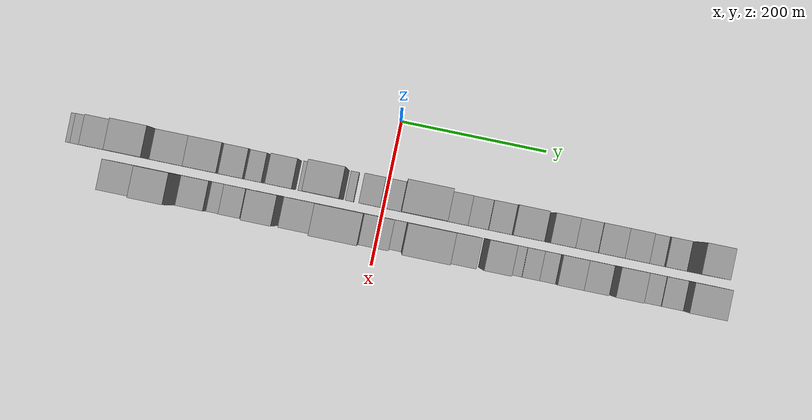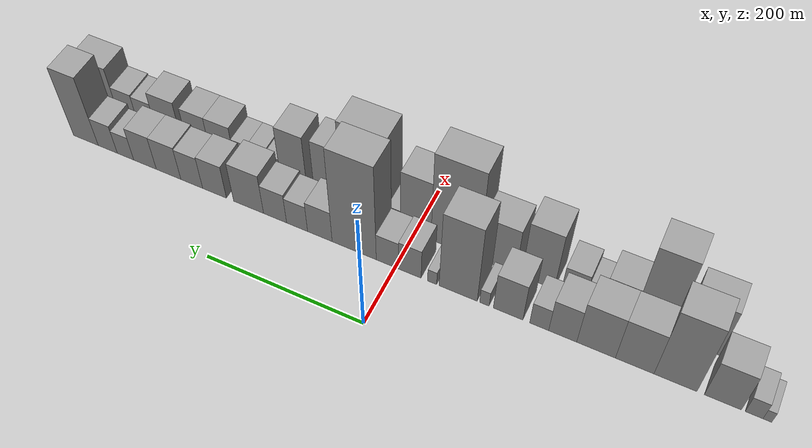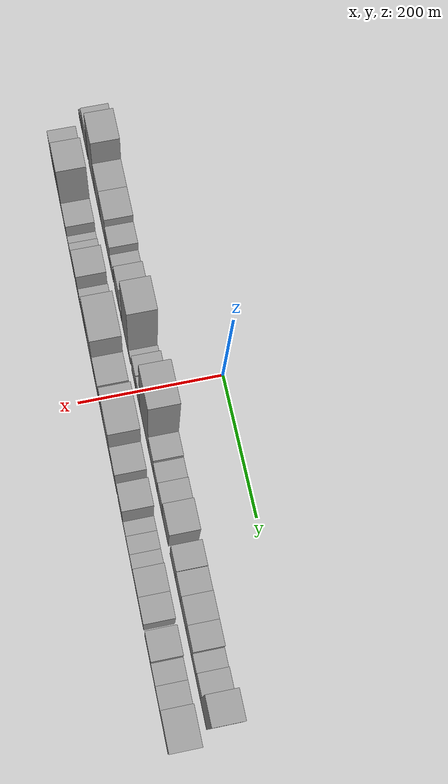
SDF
<sdf version="1.6">
 <world name="default">
  <scene>
   <sky><clouds><speed>12</speed></clouds></sky>
   <ambient>0.4 0.4 0.4 1</ambient>
   <background>0.7 0.7 0.7 1</background>
   <shadows>1</shadows>
  </scene>
  <gravity>0 0 -9.8066</gravity>
  <magnetic_field>6e-06 2.3e-05 -4.2e-05</magnetic_field>
  <physics default="0" name="default_physics" type="ode">
   <ode>
    <solver>
     <type>quick</type>
     <iters>10</iters>
     <sor>1.0</sor>
     <use_dynamic_moi_rescaling>0</use_dynamic_moi_rescaling>
    </solver>
    <constraints>
     <cfm>0</cfm>
     <erp>0.2</erp>
     <contact_max_correcting_vel>100</contact_max_correcting_vel>
     <contact_surface_layer>0.001</contact_surface_layer>
    </constraints>
   </ode>
   <max_step_size>0.004</max_step_size>
   <real_time_factor>1</real_time_factor>
   <real_time_update_rate>250</real_time_update_rate>
  </physics>
  <light name="sun" type="directional">
   <pose>0 0 10 0 0 0</pose>
   <diffuse>0.8 0.8 0.8 1</diffuse>
   <specular>0.2 0.2 0.2 1</specular>
   <attenuation>
    <range>1000</range>
    <constant>0.9</constant>
    <linear>0.01</linear>
    <quadratic>0.001</quadratic>
   </attenuation>
   <direction>-0.5 0.1 -0.9</direction>
  </light>
  <model name="building_1">
   <static>1</static>
   <pose>100.0000 -429.3522 0 0.000000 0.000000 0.000000</pose>
   <link name="link">
    <pose>0 0 10.50 0 0 0</pose>
    <collision name="collision"><geometry><box><size>40.0000 9.2957 21.0000</size></box></geometry></collision>
    <visual name="visual">
     <cast_shadows>0</cast_shadows>
     <geometry><box><size>40.0000 9.2957 21.0000</size></box></geometry>
     <material>
      <script>
       <uri>model://grey_wall/materials/scripts</uri>
       <uri>model://grey_wall/materials/textures</uri>
       <name>vrc/grey_wall</name>
      </script>
     </material>
    </visual>
   </link>
  </model>
  <model name="building_2">
   <static>1</static>
   <pose>100.0000 -415.3321 0 0.000000 0.000000 0.000000</pose>
   <link name="link">
    <pose>0 0 16.50 0 0 0</pose>
    <collision name="collision"><geometry><box><size>40.0000 18.7444 33.0000</size></box></geometry></collision>
    <visual name="visual">
     <cast_shadows>0</cast_shadows>
     <geometry><box><size>40.0000 18.7444 33.0000</size></box></geometry>
     <material>
      <script>
       <uri>model://grey_wall/materials/scripts</uri>
       <uri>model://grey_wall/materials/textures</uri>
       <name>vrc/grey_wall</name>
      </script>
     </material>
    </visual>
   </link>
  </model>
  <model name="building_3">
   <static>1</static>
   <pose>100.0000 -382.0279 0 0.000000 0.000000 0.000000</pose>
   <link name="link">
    <pose>0 0 36.00 0 0 0</pose>
    <collision name="collision"><geometry><box><size>40.0000 39.8640 72.0000</size></box></geometry></collision>
    <visual name="visual">
     <cast_shadows>0</cast_shadows>
     <geometry><box><size>40.0000 39.8640 72.0000</size></box></geometry>
     <material>
      <script>
       <uri>model://grey_wall/materials/scripts</uri>
       <uri>model://grey_wall/materials/textures</uri>
       <name>vrc/grey_wall</name>
      </script>
     </material>
    </visual>
   </link>
  </model>
  <model name="building_4">
   <static>1</static>
   <pose>100.0000 -330.4320 0 0.000000 0.000000 0.000000</pose>
   <link name="link">
    <pose>0 0 66.00 0 0 0</pose>
    <collision name="collision"><geometry><box><size>40.0000 47.3279 132.0000</size></box></geometry></collision>
    <visual name="visual">
     <cast_shadows>0</cast_shadows>
     <geometry><box><size>40.0000 47.3279 132.0000</size></box></geometry>
     <material>
      <script>
       <uri>model://grey_wall/materials/scripts</uri>
       <uri>model://grey_wall/materials/textures</uri>
       <name>vrc/grey_wall</name>
      </script>
     </material>
    </visual>
   </link>
  </model>
  <model name="building_5">
   <static>1</static>
   <pose>100.0000 -285.1387 0 0.000000 0.000000 0.000000</pose>
   <link name="link">
    <pose>0 0 40.50 0 0 0</pose>
    <collision name="collision"><geometry><box><size>40.0000 43.2586 81.0000</size></box></geometry></collision>
    <visual name="visual">
     <cast_shadows>0</cast_shadows>
     <geometry><box><size>40.0000 43.2586 81.0000</size></box></geometry>
     <material>
      <script>
       <uri>model://grey_wall/materials/scripts</uri>
       <uri>model://grey_wall/materials/textures</uri>
       <name>vrc/grey_wall</name>
      </script>
     </material>
    </visual>
   </link>
  </model>
  <model name="building_6">
   <static>1</static>
   <pose>100.0000 -241.3889 0 0.000000 0.000000 0.000000</pose>
   <link name="link">
    <pose>0 0 40.50 0 0 0</pose>
    <collision name="collision"><geometry><box><size>40.0000 44.2410 81.0000</size></box></geometry></collision>
    <visual name="visual">
     <cast_shadows>0</cast_shadows>
     <geometry><box><size>40.0000 44.2410 81.0000</size></box></geometry>
     <material>
      <script>
       <uri>model://grey_wall/materials/scripts</uri>
       <uri>model://grey_wall/materials/textures</uri>
       <name>vrc/grey_wall</name>
      </script>
     </material>
    </visual>
   </link>
  </model>
  <model name="building_7">
   <static>1</static>
   <pose>100.0000 -202.9752 0 0.000000 0.000000 0.000000</pose>
   <link name="link">
    <pose>0 0 31.50 0 0 0</pose>
    <collision name="collision"><geometry><box><size>40.0000 32.5865 63.0000</size></box></geometry></collision>
    <visual name="visual">
     <cast_shadows>0</cast_shadows>
     <geometry><box><size>40.0000 32.5865 63.0000</size></box></geometry>
     <material>
      <script>
       <uri>model://grey_wall/materials/scripts</uri>
       <uri>model://grey_wall/materials/textures</uri>
       <name>vrc/grey_wall</name>
      </script>
     </material>
    </visual>
   </link>
  </model>
  <model name="building_8">
   <static>1</static>
   <pose>100.0000 -175.5141 0 0.000000 0.000000 0.000000</pose>
   <link name="link">
    <pose>0 0 21.00 0 0 0</pose>
    <collision name="collision"><geometry><box><size>40.0000 22.3356 42.0000</size></box></geometry></collision>
    <visual name="visual">
     <cast_shadows>0</cast_shadows>
     <geometry><box><size>40.0000 22.3356 42.0000</size></box></geometry>
     <material>
      <script>
       <uri>model://grey_wall/materials/scripts</uri>
       <uri>model://grey_wall/materials/textures</uri>
       <name>vrc/grey_wall</name>
      </script>
     </material>
    </visual>
   </link>
  </model>
  <model name="building_9">
   <static>1</static>
   <pose>100.0000 -138.6927 0 0.000000 0.000000 0.000000</pose>
   <link name="link">
    <pose>0 0 34.50 0 0 0</pose>
    <collision name="collision"><geometry><box><size>40.0000 35.3074 69.0000</size></box></geometry></collision>
    <visual name="visual">
     <cast_shadows>0</cast_shadows>
     <geometry><box><size>40.0000 35.3074 69.0000</size></box></geometry>
     <material>
      <script>
       <uri>model://grey_wall/materials/scripts</uri>
       <uri>model://grey_wall/materials/textures</uri>
       <name>vrc/grey_wall</name>
      </script>
     </material>
    </visual>
   </link>
  </model>
  <model name="building_10">
   <static>1</static>
   <pose>100.0000 -110.3156 0 0.000000 0.000000 0.000000</pose>
   <link name="link">
    <pose>0 0 13.50 0 0 0</pose>
    <collision name="collision"><geometry><box><size>40.0000 11.4467 27.0000</size></box></geometry></collision>
    <visual name="visual">
     <cast_shadows>0</cast_shadows>
     <geometry><box><size>40.0000 11.4467 27.0000</size></box></geometry>
     <material>
      <script>
       <uri>model://grey_wall/materials/scripts</uri>
       <uri>model://grey_wall/materials/textures</uri>
       <name>vrc/grey_wall</name>
      </script>
     </material>
    </visual>
   </link>
  </model>
  <model name="building_11">
   <static>1</static>
   <pose>100.0000 -78.2256 0 0.000000 0.000000 0.000000</pose>
   <link name="link">
    <pose>0 0 70.50 0 0 0</pose>
    <collision name="collision"><geometry><box><size>40.0000 46.7335 141.0000</size></box></geometry></collision>
    <visual name="visual">
     <cast_shadows>0</cast_shadows>
     <geometry><box><size>40.0000 46.7335 141.0000</size></box></geometry>
     <material>
      <script>
       <uri>model://grey_wall/materials/scripts</uri>
       <uri>model://grey_wall/materials/textures</uri>
       <name>vrc/grey_wall</name>
      </script>
     </material>
    </visual>
   </link>
  </model>
  <model name="building_12">
   <static>1</static>
   <pose>100.0000 -46.1879 0 0.000000 0.000000 0.000000</pose>
   <link name="link">
    <pose>0 0 12.00 0 0 0</pose>
    <collision name="collision"><geometry><box><size>40.0000 11.3419 24.0000</size></box></geometry></collision>
    <visual name="visual">
     <cast_shadows>0</cast_shadows>
     <geometry><box><size>40.0000 11.3419 24.0000</size></box></geometry>
     <material>
      <script>
       <uri>model://grey_wall/materials/scripts</uri>
       <uri>model://grey_wall/materials/textures</uri>
       <name>vrc/grey_wall</name>
      </script>
     </material>
    </visual>
   </link>
  </model>
  <model name="building_13">
   <static>1</static>
   <pose>100.0000 -18.2695 0 0.000000 0.000000 0.000000</pose>
   <link name="link">
    <pose>0 0 27.00 0 0 0</pose>
    <collision name="collision"><geometry><box><size>40.0000 28.4949 54.0000</size></box></geometry></collision>
    <visual name="visual">
     <cast_shadows>0</cast_shadows>
     <geometry><box><size>40.0000 28.4949 54.0000</size></box></geometry>
     <material>
      <script>
       <uri>model://grey_wall/materials/scripts</uri>
       <uri>model://grey_wall/materials/textures</uri>
       <name>vrc/grey_wall</name>
      </script>
     </material>
    </visual>
   </link>
  </model>
  <model name="building_14">
   <static>1</static>
   <pose>100.0000 10.0412 0 0.000000 0.000000 0.000000</pose>
   <link name="link">
    <pose>0 0 25.50 0 0 0</pose>
    <collision name="collision"><geometry><box><size>40.0000 28.1263 51.0000</size></box></geometry></collision>
    <visual name="visual">
     <cast_shadows>0</cast_shadows>
     <geometry><box><size>40.0000 28.1263 51.0000</size></box></geometry>
     <material>
      <script>
       <uri>model://grey_wall/materials/scripts</uri>
       <uri>model://grey_wall/materials/textures</uri>
       <name>vrc/grey_wall</name>
      </script>
     </material>
    </visual>
   </link>
  </model>
  <model name="building_15">
   <static>1</static>
   <pose>100.0000 52.5941 0 0.000000 0.000000 0.000000</pose>
   <link name="link">
    <pose>0 0 87.00 0 0 0</pose>
    <collision name="collision"><geometry><box><size>40.0000 56.9795 174.0000</size></box></geometry></collision>
    <visual name="visual">
     <cast_shadows>0</cast_shadows>
     <geometry><box><size>40.0000 56.9795 174.0000</size></box></geometry>
     <material>
      <script>
       <uri>model://grey_wall/materials/scripts</uri>
       <uri>model://grey_wall/materials/textures</uri>
       <name>vrc/grey_wall</name>
      </script>
     </material>
    </visual>
   </link>
  </model>
  <model name="building_16">
   <static>1</static>
   <pose>100.0000 97.2568 0 0.000000 0.000000 0.000000</pose>
   <link name="link">
    <pose>0 0 28.50 0 0 0</pose>
    <collision name="collision"><geometry><box><size>40.0000 32.3460 57.0000</size></box></geometry></collision>
    <visual name="visual">
     <cast_shadows>0</cast_shadows>
     <geometry><box><size>40.0000 32.3460 57.0000</size></box></geometry>
     <material>
      <script>
       <uri>model://grey_wall/materials/scripts</uri>
       <uri>model://grey_wall/materials/textures</uri>
       <name>vrc/grey_wall</name>
      </script>
     </material>
    </visual>
   </link>
  </model>
  <model name="building_17">
   <static>1</static>
   <pose>100.0000 127.3956 0 0.000000 0.000000 0.000000</pose>
   <link name="link">
    <pose>0 0 24.00 0 0 0</pose>
    <collision name="collision"><geometry><box><size>40.0000 27.9316 48.0000</size></box></geometry></collision>
    <visual name="visual">
     <cast_shadows>0</cast_shadows>
     <geometry><box><size>40.0000 27.9316 48.0000</size></box></geometry>
     <material>
      <script>
       <uri>model://grey_wall/materials/scripts</uri>
       <uri>model://grey_wall/materials/textures</uri>
       <name>vrc/grey_wall</name>
      </script>
     </material>
    </visual>
   </link>
  </model>
  <model name="building_18">
   <static>1</static>
   <pose>100.0000 156.8957 0 0.000000 0.000000 0.000000</pose>
   <link name="link">
    <pose>0 0 27.00 0 0 0</pose>
    <collision name="collision"><geometry><box><size>40.0000 31.0685 54.0000</size></box></geometry></collision>
    <visual name="visual">
     <cast_shadows>0</cast_shadows>
     <geometry><box><size>40.0000 31.0685 54.0000</size></box></geometry>
     <material>
      <script>
       <uri>model://grey_wall/materials/scripts</uri>
       <uri>model://grey_wall/materials/textures</uri>
       <name>vrc/grey_wall</name>
      </script>
     </material>
    </visual>
   </link>
  </model>
  <model name="building_19">
   <static>1</static>
   <pose>100.0000 192.8929 0 0.000000 0.000000 0.000000</pose>
   <link name="link">
    <pose>0 0 36.00 0 0 0</pose>
    <collision name="collision"><geometry><box><size>40.0000 40.9259 72.0000</size></box></geometry></collision>
    <visual name="visual">
     <cast_shadows>0</cast_shadows>
     <geometry><box><size>40.0000 40.9259 72.0000</size></box></geometry>
     <material>
      <script>
       <uri>model://grey_wall/materials/scripts</uri>
       <uri>model://grey_wall/materials/textures</uri>
       <name>vrc/grey_wall</name>
      </script>
     </material>
    </visual>
   </link>
  </model>
  <model name="building_20">
   <static>1</static>
   <pose>100.0000 239.9159 0 0.000000 0.000000 0.000000</pose>
   <link name="link">
    <pose>0 0 30.00 0 0 0</pose>
    <collision name="collision"><geometry><box><size>40.0000 33.1200 60.0000</size></box></geometry></collision>
    <visual name="visual">
     <cast_shadows>0</cast_shadows>
     <geometry><box><size>40.0000 33.1200 60.0000</size></box></geometry>
     <material>
      <script>
       <uri>model://grey_wall/materials/scripts</uri>
       <uri>model://grey_wall/materials/textures</uri>
       <name>vrc/grey_wall</name>
      </script>
     </material>
    </visual>
   </link>
  </model>
  <model name="building_21">
   <static>1</static>
   <pose>100.0000 271.8289 0 0.000000 0.000000 0.000000</pose>
   <link name="link">
    <pose>0 0 28.50 0 0 0</pose>
    <collision name="collision"><geometry><box><size>40.0000 30.7061 57.0000</size></box></geometry></collision>
    <visual name="visual">
     <cast_shadows>0</cast_shadows>
     <geometry><box><size>40.0000 30.7061 57.0000</size></box></geometry>
     <material>
      <script>
       <uri>model://grey_wall/materials/scripts</uri>
       <uri>model://grey_wall/materials/textures</uri>
       <name>vrc/grey_wall</name>
      </script>
     </material>
    </visual>
   </link>
  </model>
  <model name="building_22">
   <static>1</static>
   <pose>100.0000 304.7334 0 0.000000 0.000000 0.000000</pose>
   <link name="link">
    <pose>0 0 30.00 0 0 0</pose>
    <collision name="collision"><geometry><box><size>40.0000 35.1029 60.0000</size></box></geometry></collision>
    <visual name="visual">
     <cast_shadows>0</cast_shadows>
     <geometry><box><size>40.0000 35.1029 60.0000</size></box></geometry>
     <material>
      <script>
       <uri>model://grey_wall/materials/scripts</uri>
       <uri>model://grey_wall/materials/textures</uri>
       <name>vrc/grey_wall</name>
      </script>
     </material>
    </visual>
   </link>
  </model>
  <model name="building_23">
   <static>1</static>
   <pose>100.0000 338.6224 0 0.000000 0.000000 0.000000</pose>
   <link name="link">
    <pose>0 0 30.00 0 0 0</pose>
    <collision name="collision"><geometry><box><size>40.0000 32.6751 60.0000</size></box></geometry></collision>
    <visual name="visual">
     <cast_shadows>0</cast_shadows>
     <geometry><box><size>40.0000 32.6751 60.0000</size></box></geometry>
     <material>
      <script>
       <uri>model://grey_wall/materials/scripts</uri>
       <uri>model://grey_wall/materials/textures</uri>
       <name>vrc/grey_wall</name>
      </script>
     </material>
    </visual>
   </link>
  </model>
  <model name="building_24">
   <static>1</static>
   <pose>100.0000 366.9691 0 0.000000 0.000000 0.000000</pose>
   <link name="link">
    <pose>0 0 21.00 0 0 0</pose>
    <collision name="collision"><geometry><box><size>40.0000 24.0184 42.0000</size></box></geometry></collision>
    <visual name="visual">
     <cast_shadows>0</cast_shadows>
     <geometry><box><size>40.0000 24.0184 42.0000</size></box></geometry>
     <material>
      <script>
       <uri>model://grey_wall/materials/scripts</uri>
       <uri>model://grey_wall/materials/textures</uri>
       <name>vrc/grey_wall</name>
      </script>
     </material>
    </visual>
   </link>
  </model>
  <model name="building_25">
   <static>1</static>
   <pose>100.0000 393.1067 0 0.000000 0.000000 0.000000</pose>
   <link name="link">
    <pose>0 0 25.50 0 0 0</pose>
    <collision name="collision"><geometry><box><size>40.0000 28.2567 51.0000</size></box></geometry></collision>
    <visual name="visual">
     <cast_shadows>0</cast_shadows>
     <geometry><box><size>40.0000 28.2567 51.0000</size></box></geometry>
     <material>
      <script>
       <uri>model://grey_wall/materials/scripts</uri>
       <uri>model://grey_wall/materials/textures</uri>
       <name>vrc/grey_wall</name>
      </script>
     </material>
    </visual>
   </link>
  </model>
  <model name="building_26">
   <static>1</static>
   <pose>100.0000 425.6987 0 0.000000 0.000000 0.000000</pose>
   <link name="link">
    <pose>0 0 61.50 0 0 0</pose>
    <collision name="collision"><geometry><box><size>40.0000 36.9274 123.0000</size></box></geometry></collision>
    <visual name="visual">
     <cast_shadows>0</cast_shadows>
     <geometry><box><size>40.0000 36.9274 123.0000</size></box></geometry>
     <material>
      <script>
       <uri>model://grey_wall/materials/scripts</uri>
       <uri>model://grey_wall/materials/textures</uri>
       <name>vrc/grey_wall</name>
      </script>
     </material>
    </visual>
   </link>
  </model>
  <model name="building_27">
   <static>1</static>
   <pose>152.0000 -340.6955 0 0.000000 0.000000 0.000000</pose>
   <link name="link">
    <pose>0 0 45.00 0 0 0</pose>
    <collision name="collision"><geometry><box><size>40.0000 46.2030 90.0000</size></box></geometry></collision>
    <visual name="visual">
     <cast_shadows>0</cast_shadows>
     <geometry><box><size>40.0000 46.2030 90.0000</size></box></geometry>
     <material>
      <script>
       <uri>model://grey_wall/materials/scripts</uri>
       <uri>model://grey_wall/materials/textures</uri>
       <name>vrc/grey_wall</name>
      </script>
     </material>
    </visual>
   </link>
  </model>
  <model name="building_28">
   <static>1</static>
   <pose>152.0000 -287.5244 0 0.000000 0.000000 0.000000</pose>
   <link name="link">
    <pose>0 0 73.50 0 0 0</pose>
    <collision name="collision"><geometry><box><size>40.0000 44.1390 147.0000</size></box></geometry></collision>
    <visual name="visual">
     <cast_shadows>0</cast_shadows>
     <geometry><box><size>40.0000 44.1390 147.0000</size></box></geometry>
     <material>
      <script>
       <uri>model://grey_wall/materials/scripts</uri>
       <uri>model://grey_wall/materials/textures</uri>
       <name>vrc/grey_wall</name>
      </script>
     </material>
    </visual>
   </link>
  </model>
  <model name="building_29">
   <static>1</static>
   <pose>152.0000 -247.1263 0 0.000000 0.000000 0.000000</pose>
   <link name="link">
    <pose>0 0 31.50 0 0 0</pose>
    <collision name="collision"><geometry><box><size>40.0000 36.6573 63.0000</size></box></geometry></collision>
    <visual name="visual">
     <cast_shadows>0</cast_shadows>
     <geometry><box><size>40.0000 36.6573 63.0000</size></box></geometry>
     <material>
      <script>
       <uri>model://grey_wall/materials/scripts</uri>
       <uri>model://grey_wall/materials/textures</uri>
       <name>vrc/grey_wall</name>
      </script>
     </material>
    </visual>
   </link>
  </model>
  <model name="building_30">
   <static>1</static>
   <pose>152.0000 -219.5107 0 0.000000 0.000000 0.000000</pose>
   <link name="link">
    <pose>0 0 18.00 0 0 0</pose>
    <collision name="collision"><geometry><box><size>40.0000 18.5739 36.0000</size></box></geometry></collision>
    <visual name="visual">
     <cast_shadows>0</cast_shadows>
     <geometry><box><size>40.0000 18.5739 36.0000</size></box></geometry>
     <material>
      <script>
       <uri>model://grey_wall/materials/scripts</uri>
       <uri>model://grey_wall/materials/textures</uri>
       <name>vrc/grey_wall</name>
      </script>
     </material>
    </visual>
   </link>
  </model>
  <model name="building_31">
   <static>1</static>
   <pose>152.0000 -195.7394 0 0.000000 0.000000 0.000000</pose>
   <link name="link">
    <pose>0 0 25.50 0 0 0</pose>
    <collision name="collision"><geometry><box><size>40.0000 28.9689 51.0000</size></box></geometry></collision>
    <visual name="visual">
     <cast_shadows>0</cast_shadows>
     <geometry><box><size>40.0000 28.9689 51.0000</size></box></geometry>
     <material>
      <script>
       <uri>model://grey_wall/materials/scripts</uri>
       <uri>model://grey_wall/materials/textures</uri>
       <name>vrc/grey_wall</name>
      </script>
     </material>
    </visual>
   </link>
  </model>
  <model name="building_32">
   <static>1</static>
   <pose>152.0000 -153.5335 0 0.000000 0.000000 0.000000</pose>
   <link name="link">
    <pose>0 0 52.50 0 0 0</pose>
    <collision name="collision"><geometry><box><size>40.0000 39.4429 105.0000</size></box></geometry></collision>
    <visual name="visual">
     <cast_shadows>0</cast_shadows>
     <geometry><box><size>40.0000 39.4429 105.0000</size></box></geometry>
     <material>
      <script>
       <uri>model://grey_wall/materials/scripts</uri>
       <uri>model://grey_wall/materials/textures</uri>
       <name>vrc/grey_wall</name>
      </script>
     </material>
    </visual>
   </link>
  </model>
  <model name="building_33">
   <static>1</static>
   <pose>152.0000 -104.1254 0 0.000000 0.000000 0.000000</pose>
   <link name="link">
    <pose>0 0 42.00 0 0 0</pose>
    <collision name="collision"><geometry><box><size>40.0000 45.3733 84.0000</size></box></geometry></collision>
    <visual name="visual">
     <cast_shadows>0</cast_shadows>
     <geometry><box><size>40.0000 45.3733 84.0000</size></box></geometry>
     <material>
      <script>
       <uri>model://grey_wall/materials/scripts</uri>
       <uri>model://grey_wall/materials/textures</uri>
       <name>vrc/grey_wall</name>
      </script>
     </material>
    </visual>
   </link>
  </model>
  <model name="building_34">
   <static>1</static>
   <pose>152.0000 -51.1165 0 0.000000 0.000000 0.000000</pose>
   <link name="link">
    <pose>0 0 81.00 0 0 0</pose>
    <collision name="collision"><geometry><box><size>40.0000 60.6444 162.0000</size></box></geometry></collision>
    <visual name="visual">
     <cast_shadows>0</cast_shadows>
     <geometry><box><size>40.0000 60.6444 162.0000</size></box></geometry>
     <material>
      <script>
       <uri>model://grey_wall/materials/scripts</uri>
       <uri>model://grey_wall/materials/textures</uri>
       <name>vrc/grey_wall</name>
      </script>
     </material>
    </visual>
   </link>
  </model>
  <model name="building_35">
   <static>1</static>
   <pose>152.0000 -1.2081 0 0.000000 0.000000 0.000000</pose>
   <link name="link">
    <pose>0 0 54.00 0 0 0</pose>
    <collision name="collision"><geometry><box><size>40.0000 39.1724 108.0000</size></box></geometry></collision>
    <visual name="visual">
     <cast_shadows>0</cast_shadows>
     <geometry><box><size>40.0000 39.1724 108.0000</size></box></geometry>
     <material>
      <script>
       <uri>model://grey_wall/materials/scripts</uri>
       <uri>model://grey_wall/materials/textures</uri>
       <name>vrc/grey_wall</name>
      </script>
     </material>
    </visual>
   </link>
  </model>
  <model name="building_36">
   <static>1</static>
   <pose>152.0000 26.8539 0 0.000000 0.000000 0.000000</pose>
   <link name="link">
    <pose>0 0 16.50 0 0 0</pose>
    <collision name="collision"><geometry><box><size>40.0000 16.9517 33.0000</size></box></geometry></collision>
    <visual name="visual">
     <cast_shadows>0</cast_shadows>
     <geometry><box><size>40.0000 16.9517 33.0000</size></box></geometry>
     <material>
      <script>
       <uri>model://grey_wall/materials/scripts</uri>
       <uri>model://grey_wall/materials/textures</uri>
       <name>vrc/grey_wall</name>
      </script>
     </material>
    </visual>
   </link>
  </model>
  <model name="building_37">
   <static>1</static>
   <pose>152.0000 65.6807 0 0.000000 0.000000 0.000000</pose>
   <link name="link">
    <pose>0 0 76.50 0 0 0</pose>
    <collision name="collision"><geometry><box><size>40.0000 60.7019 153.0000</size></box></geometry></collision>
    <visual name="visual">
     <cast_shadows>0</cast_shadows>
     <geometry><box><size>40.0000 60.7019 153.0000</size></box></geometry>
     <material>
      <script>
       <uri>model://grey_wall/materials/scripts</uri>
       <uri>model://grey_wall/materials/textures</uri>
       <name>vrc/grey_wall</name>
      </script>
     </material>
    </visual>
   </link>
  </model>
  <model name="building_38">
   <static>1</static>
   <pose>152.0000 114.2111 0 0.000000 0.000000 0.000000</pose>
   <link name="link">
    <pose>0 0 49.50 0 0 0</pose>
    <collision name="collision"><geometry><box><size>40.0000 36.3589 99.0000</size></box></geometry></collision>
    <visual name="visual">
     <cast_shadows>0</cast_shadows>
     <geometry><box><size>40.0000 36.3589 99.0000</size></box></geometry>
     <material>
      <script>
       <uri>model://grey_wall/materials/scripts</uri>
       <uri>model://grey_wall/materials/textures</uri>
       <name>vrc/grey_wall</name>
      </script>
     </material>
    </visual>
   </link>
  </model>
  <model name="building_39">
   <static>1</static>
   <pose>152.0000 160.4192 0 0.000000 0.000000 0.000000</pose>
   <link name="link">
    <pose>0 0 49.50 0 0 0</pose>
    <collision name="collision"><geometry><box><size>40.0000 36.0573 99.0000</size></box></geometry></collision>
    <visual name="visual">
     <cast_shadows>0</cast_shadows>
     <geometry><box><size>40.0000 36.0573 99.0000</size></box></geometry>
     <material>
      <script>
       <uri>model://grey_wall/materials/scripts</uri>
       <uri>model://grey_wall/materials/textures</uri>
       <name>vrc/grey_wall</name>
      </script>
     </material>
    </visual>
   </link>
  </model>
  <model name="building_40">
   <static>1</static>
   <pose>152.0000 188.2636 0 0.000000 0.000000 0.000000</pose>
   <link name="link">
    <pose>0 0 19.50 0 0 0</pose>
    <collision name="collision"><geometry><box><size>40.0000 19.6315 39.0000</size></box></geometry></collision>
    <visual name="visual">
     <cast_shadows>0</cast_shadows>
     <geometry><box><size>40.0000 19.6315 39.0000</size></box></geometry>
     <material>
      <script>
       <uri>model://grey_wall/materials/scripts</uri>
       <uri>model://grey_wall/materials/textures</uri>
       <name>vrc/grey_wall</name>
      </script>
     </material>
    </visual>
   </link>
  </model>
  <model name="building_41">
   <static>1</static>
   <pose>152.0000 209.8251 0 0.000000 0.000000 0.000000</pose>
   <link name="link">
    <pose>0 0 21.00 0 0 0</pose>
    <collision name="collision"><geometry><box><size>40.0000 23.4914 42.0000</size></box></geometry></collision>
    <visual name="visual">
     <cast_shadows>0</cast_shadows>
     <geometry><box><size>40.0000 23.4914 42.0000</size></box></geometry>
     <material>
      <script>
       <uri>model://grey_wall/materials/scripts</uri>
       <uri>model://grey_wall/materials/textures</uri>
       <name>vrc/grey_wall</name>
      </script>
     </material>
    </visual>
   </link>
  </model>
  <model name="building_42">
   <static>1</static>
   <pose>152.0000 232.3250 0 0.000000 0.000000 0.000000</pose>
   <link name="link">
    <pose>0 0 21.00 0 0 0</pose>
    <collision name="collision"><geometry><box><size>40.0000 21.5085 42.0000</size></box></geometry></collision>
    <visual name="visual">
     <cast_shadows>0</cast_shadows>
     <geometry><box><size>40.0000 21.5085 42.0000</size></box></geometry>
     <material>
      <script>
       <uri>model://grey_wall/materials/scripts</uri>
       <uri>model://grey_wall/materials/textures</uri>
       <name>vrc/grey_wall</name>
      </script>
     </material>
    </visual>
   </link>
  </model>
  <model name="building_43">
   <static>1</static>
   <pose>152.0000 260.5982 0 0.000000 0.000000 0.000000</pose>
   <link name="link">
    <pose>0 0 31.50 0 0 0</pose>
    <collision name="collision"><geometry><box><size>40.0000 35.0378 63.0000</size></box></geometry></collision>
    <visual name="visual">
     <cast_shadows>0</cast_shadows>
     <geometry><box><size>40.0000 35.0378 63.0000</size></box></geometry>
     <material>
      <script>
       <uri>model://grey_wall/materials/scripts</uri>
       <uri>model://grey_wall/materials/textures</uri>
       <name>vrc/grey_wall</name>
      </script>
     </material>
    </visual>
   </link>
  </model>
  <model name="building_44">
   <static>1</static>
   <pose>152.0000 294.7860 0 0.000000 0.000000 0.000000</pose>
   <link name="link">
    <pose>0 0 31.50 0 0 0</pose>
    <collision name="collision"><geometry><box><size>40.0000 33.3378 63.0000</size></box></geometry></collision>
    <visual name="visual">
     <cast_shadows>0</cast_shadows>
     <geometry><box><size>40.0000 33.3378 63.0000</size></box></geometry>
     <material>
      <script>
       <uri>model://grey_wall/materials/scripts</uri>
       <uri>model://grey_wall/materials/textures</uri>
       <name>vrc/grey_wall</name>
      </script>
     </material>
    </visual>
   </link>
  </model>
  <model name="building_45">
   <static>1</static>
   <pose>152.0000 338.0485 0 0.000000 0.000000 0.000000</pose>
   <link name="link">
    <pose>0 0 34.50 0 0 0</pose>
    <collision name="collision"><geometry><box><size>40.0000 37.1873 69.0000</size></box></geometry></collision>
    <visual name="visual">
     <cast_shadows>0</cast_shadows>
     <geometry><box><size>40.0000 37.1873 69.0000</size></box></geometry>
     <material>
      <script>
       <uri>model://grey_wall/materials/scripts</uri>
       <uri>model://grey_wall/materials/textures</uri>
       <name>vrc/grey_wall</name>
      </script>
     </material>
    </visual>
   </link>
  </model>
  <model name="building_46">
   <static>1</static>
   <pose>152.0000 370.3069 0 0.000000 0.000000 0.000000</pose>
   <link name="link">
    <pose>0 0 24.00 0 0 0</pose>
    <collision name="collision"><geometry><box><size>40.0000 27.3295 48.0000</size></box></geometry></collision>
    <visual name="visual">
     <cast_shadows>0</cast_shadows>
     <geometry><box><size>40.0000 27.3295 48.0000</size></box></geometry>
     <material>
      <script>
       <uri>model://grey_wall/materials/scripts</uri>
       <uri>model://grey_wall/materials/textures</uri>
       <name>vrc/grey_wall</name>
      </script>
     </material>
    </visual>
   </link>
  </model>
  <model name="building_47">
   <static>1</static>
   <pose>152.0000 398.4490 0 0.000000 0.000000 0.000000</pose>
   <link name="link">
    <pose>0 0 25.50 0 0 0</pose>
    <collision name="collision"><geometry><box><size>40.0000 28.9546 51.0000</size></box></geometry></collision>
    <visual name="visual">
     <cast_shadows>0</cast_shadows>
     <geometry><box><size>40.0000 28.9546 51.0000</size></box></geometry>
     <material>
      <script>
       <uri>model://grey_wall/materials/scripts</uri>
       <uri>model://grey_wall/materials/textures</uri>
       <name>vrc/grey_wall</name>
      </script>
     </material>
    </visual>
   </link>
  </model>
  <model name="building_48">
   <static>1</static>
   <pose>152.0000 437.6552 0 0.000000 0.000000 0.000000</pose>
   <link name="link">
    <pose>0 0 42.00 0 0 0</pose>
    <collision name="collision"><geometry><box><size>40.0000 49.4577 84.0000</size></box></geometry></collision>
    <visual name="visual">
     <cast_shadows>0</cast_shadows>
     <geometry><box><size>40.0000 49.4577 84.0000</size></box></geometry>
     <material>
      <script>
       <uri>model://grey_wall/materials/scripts</uri>
       <uri>model://grey_wall/materials/textures</uri>
       <name>vrc/grey_wall</name>
      </script>
     </material>
    </visual>
   </link>
  </model>
 </world>
</sdf>
